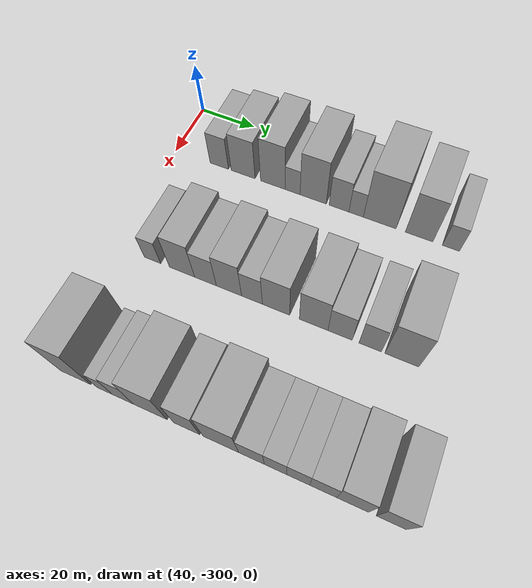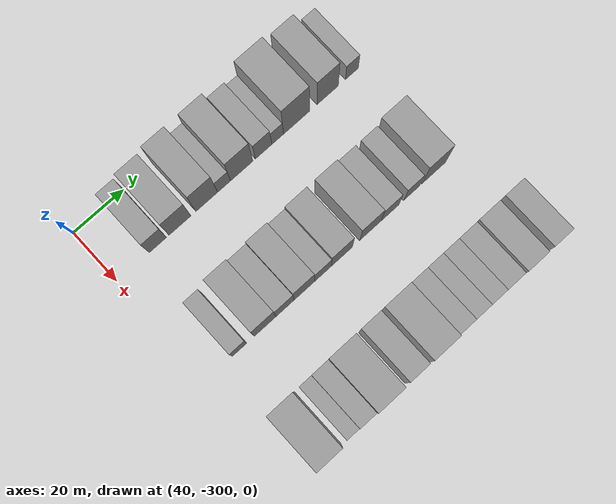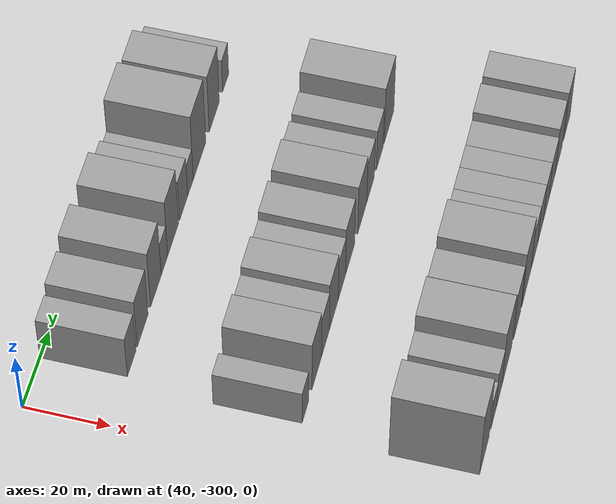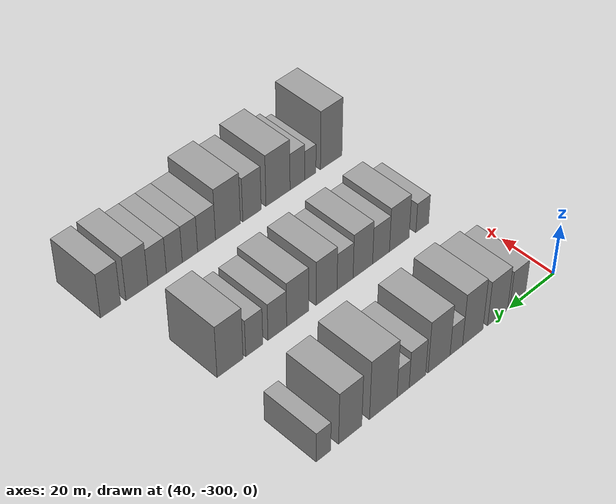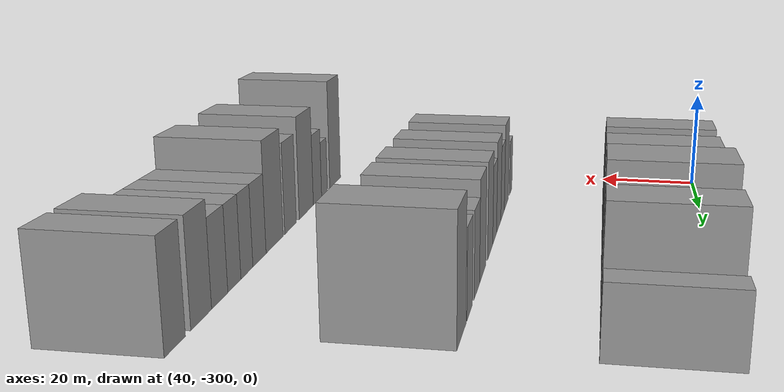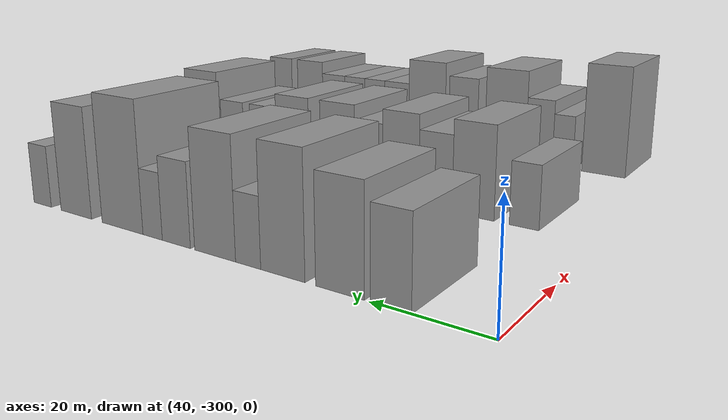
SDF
<sdf version="1.6">
 <world name="default">
  <model name="building_12">
   <static>1</static>
   <pose>50.0000 -283.6015 0 0.000000 0.000000 0.000000</pose>
   <link name="link">
    <pose>0 0 7.50 0 0 0</pose>
    <collision name="collision"><geometry><box><size>20.0000 6.8444 15.0000</size></box></geometry></collision>
    <visual name="visual">
     <cast_shadows>0</cast_shadows>
     <geometry><box><size>20.0000 6.8444 15.0000</size></box></geometry>
     <material>
      <script>
       <uri>model://grey_wall/materials/scripts</uri>
       <uri>model://grey_wall/materials/textures</uri>
       <name>vrc/grey_wall</name>
      </script>
     </material>
    </visual>
   </link>
  </model>
  <model name="building_13">
   <static>1</static>
   <pose>50.0000 -274.7930 0 0.000000 0.000000 0.000000</pose>
   <link name="link">
    <pose>0 0 9.00 0 0 0</pose>
    <collision name="collision"><geometry><box><size>20.0000 8.7725 18.0000</size></box></geometry></collision>
    <visual name="visual">
     <cast_shadows>0</cast_shadows>
     <geometry><box><size>20.0000 8.7725 18.0000</size></box></geometry>
     <material>
      <script>
       <uri>model://grey_wall/materials/scripts</uri>
       <uri>model://grey_wall/materials/textures</uri>
       <name>vrc/grey_wall</name>
      </script>
     </material>
    </visual>
   </link>
  </model>
  <model name="building_14">
   <static>1</static>
   <pose>50.0000 -264.0274 0 0.000000 0.000000 0.000000</pose>
   <link name="link">
    <pose>0 0 10.50 0 0 0</pose>
    <collision name="collision"><geometry><box><size>20.0000 8.7588 21.0000</size></box></geometry></collision>
    <visual name="visual">
     <cast_shadows>0</cast_shadows>
     <geometry><box><size>20.0000 8.7588 21.0000</size></box></geometry>
     <material>
      <script>
       <uri>model://grey_wall/materials/scripts</uri>
       <uri>model://grey_wall/materials/textures</uri>
       <name>vrc/grey_wall</name>
      </script>
     </material>
    </visual>
   </link>
  </model>
  <model name="building_15">
   <static>1</static>
   <pose>50.0000 -257.0057 0 0.000000 0.000000 0.000000</pose>
   <link name="link">
    <pose>0 0 6.00 0 0 0</pose>
    <collision name="collision"><geometry><box><size>20.0000 5.2845 12.0000</size></box></geometry></collision>
    <visual name="visual">
     <cast_shadows>0</cast_shadows>
     <geometry><box><size>20.0000 5.2845 12.0000</size></box></geometry>
     <material>
      <script>
       <uri>model://grey_wall/materials/scripts</uri>
       <uri>model://grey_wall/materials/textures</uri>
       <name>vrc/grey_wall</name>
      </script>
     </material>
    </visual>
   </link>
  </model>
  <model name="building_16">
   <static>1</static>
   <pose>50.0000 -249.7945 0 0.000000 0.000000 0.000000</pose>
   <link name="link">
    <pose>0 0 10.50 0 0 0</pose>
    <collision name="collision"><geometry><box><size>20.0000 9.1378 21.0000</size></box></geometry></collision>
    <visual name="visual">
     <cast_shadows>0</cast_shadows>
     <geometry><box><size>20.0000 9.1378 21.0000</size></box></geometry>
     <material>
      <script>
       <uri>model://grey_wall/materials/scripts</uri>
       <uri>model://grey_wall/materials/textures</uri>
       <name>vrc/grey_wall</name>
      </script>
     </material>
    </visual>
   </link>
  </model>
  <model name="building_17">
   <static>1</static>
   <pose>50.0000 -240.8552 0 0.000000 0.000000 0.000000</pose>
   <link name="link">
    <pose>0 0 7.50 0 0 0</pose>
    <collision name="collision"><geometry><box><size>20.0000 6.7409 15.0000</size></box></geometry></collision>
    <visual name="visual">
     <cast_shadows>0</cast_shadows>
     <geometry><box><size>20.0000 6.7409 15.0000</size></box></geometry>
     <material>
      <script>
       <uri>model://grey_wall/materials/scripts</uri>
       <uri>model://grey_wall/materials/textures</uri>
       <name>vrc/grey_wall</name>
      </script>
     </material>
    </visual>
   </link>
  </model>
  <model name="building_18">
   <static>1</static>
   <pose>50.0000 -235.0517 0 0.000000 0.000000 0.000000</pose>
   <link name="link">
    <pose>0 0 6.00 0 0 0</pose>
    <collision name="collision"><geometry><box><size>20.0000 4.8660 12.0000</size></box></geometry></collision>
    <visual name="visual">
     <cast_shadows>0</cast_shadows>
     <geometry><box><size>20.0000 4.8660 12.0000</size></box></geometry>
     <material>
      <script>
       <uri>model://grey_wall/materials/scripts</uri>
       <uri>model://grey_wall/materials/textures</uri>
       <name>vrc/grey_wall</name>
      </script>
     </material>
    </visual>
   </link>
  </model>
  <model name="building_19">
   <static>1</static>
   <pose>50.0000 -227.1657 0 0.000000 0.000000 0.000000</pose>
   <link name="link">
    <pose>0 0 12.00 0 0 0</pose>
    <collision name="collision"><geometry><box><size>20.0000 10.9060 24.0000</size></box></geometry></collision>
    <visual name="visual">
     <cast_shadows>0</cast_shadows>
     <geometry><box><size>20.0000 10.9060 24.0000</size></box></geometry>
     <material>
      <script>
       <uri>model://grey_wall/materials/scripts</uri>
       <uri>model://grey_wall/materials/textures</uri>
       <name>vrc/grey_wall</name>
      </script>
     </material>
    </visual>
   </link>
  </model>
  <model name="building_20">
   <static>1</static>
   <pose>50.0000 -214.2482 0 0.000000 0.000000 0.000000</pose>
   <link name="link">
    <pose>0 0 10.50 0 0 0</pose>
    <collision name="collision"><geometry><box><size>20.0000 8.9290 21.0000</size></box></geometry></collision>
    <visual name="visual">
     <cast_shadows>0</cast_shadows>
     <geometry><box><size>20.0000 8.9290 21.0000</size></box></geometry>
     <material>
      <script>
       <uri>model://grey_wall/materials/scripts</uri>
       <uri>model://grey_wall/materials/textures</uri>
       <name>vrc/grey_wall</name>
      </script>
     </material>
    </visual>
   </link>
  </model>
  <model name="building_21">
   <static>1</static>
   <pose>50.0000 -204.0653 0 0.000000 0.000000 0.000000</pose>
   <link name="link">
    <pose>0 0 6.00 0 0 0</pose>
    <collision name="collision"><geometry><box><size>20.0000 5.4369 12.0000</size></box></geometry></collision>
    <visual name="visual">
     <cast_shadows>0</cast_shadows>
     <geometry><box><size>20.0000 5.4369 12.0000</size></box></geometry>
     <material>
      <script>
       <uri>model://grey_wall/materials/scripts</uri>
       <uri>model://grey_wall/materials/textures</uri>
       <name>vrc/grey_wall</name>
      </script>
     </material>
    </visual>
   </link>
  </model>
  <model name="building_102">
   <static>1</static>
   <pose>90.0000 -286.2697 0 0.000000 0.000000 0.000000</pose>
   <link name="link">
    <pose>0 0 6.00 0 0 0</pose>
    <collision name="collision"><geometry><box><size>20.0000 5.6726 12.0000</size></box></geometry></collision>
    <visual name="visual">
     <cast_shadows>0</cast_shadows>
     <geometry><box><size>20.0000 5.6726 12.0000</size></box></geometry>
     <material>
      <script>
       <uri>model://grey_wall/materials/scripts</uri>
       <uri>model://grey_wall/materials/textures</uri>
       <name>vrc/grey_wall</name>
      </script>
     </material>
    </visual>
   </link>
  </model>
  <model name="building_103">
   <static>1</static>
   <pose>90.0000 -276.1314 0 0.000000 0.000000 0.000000</pose>
   <link name="link">
    <pose>0 0 9.00 0 0 0</pose>
    <collision name="collision"><geometry><box><size>20.0000 8.6039 18.0000</size></box></geometry></collision>
    <visual name="visual">
     <cast_shadows>0</cast_shadows>
     <geometry><box><size>20.0000 8.6039 18.0000</size></box></geometry>
     <material>
      <script>
       <uri>model://grey_wall/materials/scripts</uri>
       <uri>model://grey_wall/materials/textures</uri>
       <name>vrc/grey_wall</name>
      </script>
     </material>
    </visual>
   </link>
  </model>
  <model name="building_104">
   <static>1</static>
   <pose>90.0000 -268.1952 0 0.000000 0.000000 0.000000</pose>
   <link name="link">
    <pose>0 0 7.50 0 0 0</pose>
    <collision name="collision"><geometry><box><size>20.0000 7.2685 15.0000</size></box></geometry></collision>
    <visual name="visual">
     <cast_shadows>0</cast_shadows>
     <geometry><box><size>20.0000 7.2685 15.0000</size></box></geometry>
     <material>
      <script>
       <uri>model://grey_wall/materials/scripts</uri>
       <uri>model://grey_wall/materials/textures</uri>
       <name>vrc/grey_wall</name>
      </script>
     </material>
    </visual>
   </link>
  </model>
  <model name="building_105">
   <static>1</static>
   <pose>90.0000 -260.4271 0 0.000000 0.000000 0.000000</pose>
   <link name="link">
    <pose>0 0 9.00 0 0 0</pose>
    <collision name="collision"><geometry><box><size>20.0000 8.2677 18.0000</size></box></geometry></collision>
    <visual name="visual">
     <cast_shadows>0</cast_shadows>
     <geometry><box><size>20.0000 8.2677 18.0000</size></box></geometry>
     <material>
      <script>
       <uri>model://grey_wall/materials/scripts</uri>
       <uri>model://grey_wall/materials/textures</uri>
       <name>vrc/grey_wall</name>
      </script>
     </material>
    </visual>
   </link>
  </model>
  <model name="building_106">
   <static>1</static>
   <pose>90.0000 -252.9322 0 0.000000 0.000000 0.000000</pose>
   <link name="link">
    <pose>0 0 7.50 0 0 0</pose>
    <collision name="collision"><geometry><box><size>20.0000 6.7220 15.0000</size></box></geometry></collision>
    <visual name="visual">
     <cast_shadows>0</cast_shadows>
     <geometry><box><size>20.0000 6.7220 15.0000</size></box></geometry>
     <material>
      <script>
       <uri>model://grey_wall/materials/scripts</uri>
       <uri>model://grey_wall/materials/textures</uri>
       <name>vrc/grey_wall</name>
      </script>
     </material>
    </visual>
   </link>
  </model>
  <model name="building_107">
   <static>1</static>
   <pose>90.0000 -245.2577 0 0.000000 0.000000 0.000000</pose>
   <link name="link">
    <pose>0 0 9.00 0 0 0</pose>
    <collision name="collision"><geometry><box><size>20.0000 8.6270 18.0000</size></box></geometry></collision>
    <visual name="visual">
     <cast_shadows>0</cast_shadows>
     <geometry><box><size>20.0000 8.6270 18.0000</size></box></geometry>
     <material>
      <script>
       <uri>model://grey_wall/materials/scripts</uri>
       <uri>model://grey_wall/materials/textures</uri>
       <name>vrc/grey_wall</name>
      </script>
     </material>
    </visual>
   </link>
  </model>
  <model name="building_108">
   <static>1</static>
   <pose>90.0000 -233.5335 0 0.000000 0.000000 0.000000</pose>
   <link name="link">
    <pose>0 0 9.00 0 0 0</pose>
    <collision name="collision"><geometry><box><size>20.0000 8.8213 18.0000</size></box></geometry></collision>
    <visual name="visual">
     <cast_shadows>0</cast_shadows>
     <geometry><box><size>20.0000 8.8213 18.0000</size></box></geometry>
     <material>
      <script>
       <uri>model://grey_wall/materials/scripts</uri>
       <uri>model://grey_wall/materials/textures</uri>
       <name>vrc/grey_wall</name>
      </script>
     </material>
    </visual>
   </link>
  </model>
  <model name="building_109">
   <static>1</static>
   <pose>90.0000 -225.4375 0 0.000000 0.000000 0.000000</pose>
   <link name="link">
    <pose>0 0 7.50 0 0 0</pose>
    <collision name="collision"><geometry><box><size>20.0000 7.3708 15.0000</size></box></geometry></collision>
    <visual name="visual">
     <cast_shadows>0</cast_shadows>
     <geometry><box><size>20.0000 7.3708 15.0000</size></box></geometry>
     <material>
      <script>
       <uri>model://grey_wall/materials/scripts</uri>
       <uri>model://grey_wall/materials/textures</uri>
       <name>vrc/grey_wall</name>
      </script>
     </material>
    </visual>
   </link>
  </model>
  <model name="building_110">
   <static>1</static>
   <pose>90.0000 -216.4301 0 0.000000 0.000000 0.000000</pose>
   <link name="link">
    <pose>0 0 7.50 0 0 0</pose>
    <collision name="collision"><geometry><box><size>20.0000 6.6440 15.0000</size></box></geometry></collision>
    <visual name="visual">
     <cast_shadows>0</cast_shadows>
     <geometry><box><size>20.0000 6.6440 15.0000</size></box></geometry>
     <material>
      <script>
       <uri>model://grey_wall/materials/scripts</uri>
       <uri>model://grey_wall/materials/textures</uri>
       <name>vrc/grey_wall</name>
      </script>
     </material>
    </visual>
   </link>
  </model>
  <model name="building_111">
   <static>1</static>
   <pose>90.0000 -207.1613 0 0.000000 0.000000 0.000000</pose>
   <link name="link">
    <pose>0 0 10.50 0 0 0</pose>
    <collision name="collision"><geometry><box><size>20.0000 9.8936 21.0000</size></box></geometry></collision>
    <visual name="visual">
     <cast_shadows>0</cast_shadows>
     <geometry><box><size>20.0000 9.8936 21.0000</size></box></geometry>
     <material>
      <script>
       <uri>model://grey_wall/materials/scripts</uri>
       <uri>model://grey_wall/materials/textures</uri>
       <name>vrc/grey_wall</name>
      </script>
     </material>
    </visual>
   </link>
  </model>
  <model name="building_184">
   <static>1</static>
   <pose>130.0000 -287.3935 0 0.000000 0.000000 0.000000</pose>
   <link name="link">
    <pose>0 0 12.00 0 0 0</pose>
    <collision name="collision"><geometry><box><size>20.0000 9.6021 24.0000</size></box></geometry></collision>
    <visual name="visual">
     <cast_shadows>0</cast_shadows>
     <geometry><box><size>20.0000 9.6021 24.0000</size></box></geometry>
     <material>
      <script>
       <uri>model://grey_wall/materials/scripts</uri>
       <uri>model://grey_wall/materials/textures</uri>
       <name>vrc/grey_wall</name>
      </script>
     </material>
    </visual>
   </link>
  </model>
  <model name="building_185">
   <static>1</static>
   <pose>130.0000 -278.1843 0 0.000000 0.000000 0.000000</pose>
   <link name="link">
    <pose>0 0 6.00 0 0 0</pose>
    <collision name="collision"><geometry><box><size>20.0000 4.8162 12.0000</size></box></geometry></collision>
    <visual name="visual">
     <cast_shadows>0</cast_shadows>
     <geometry><box><size>20.0000 4.8162 12.0000</size></box></geometry>
     <material>
      <script>
       <uri>model://grey_wall/materials/scripts</uri>
       <uri>model://grey_wall/materials/textures</uri>
       <name>vrc/grey_wall</name>
      </script>
     </material>
    </visual>
   </link>
  </model>
  <model name="building_186">
   <static>1</static>
   <pose>130.0000 -272.5391 0 0.000000 0.000000 0.000000</pose>
   <link name="link">
    <pose>0 0 7.50 0 0 0</pose>
    <collision name="collision"><geometry><box><size>20.0000 6.4742 15.0000</size></box></geometry></collision>
    <visual name="visual">
     <cast_shadows>0</cast_shadows>
     <geometry><box><size>20.0000 6.4742 15.0000</size></box></geometry>
     <material>
      <script>
       <uri>model://grey_wall/materials/scripts</uri>
       <uri>model://grey_wall/materials/textures</uri>
       <name>vrc/grey_wall</name>
      </script>
     </material>
    </visual>
   </link>
  </model>
  <model name="building_187">
   <static>1</static>
   <pose>130.0000 -264.1479 0 0.000000 0.000000 0.000000</pose>
   <link name="link">
    <pose>0 0 10.50 0 0 0</pose>
    <collision name="collision"><geometry><box><size>20.0000 10.3081 21.0000</size></box></geometry></collision>
    <visual name="visual">
     <cast_shadows>0</cast_shadows>
     <geometry><box><size>20.0000 10.3081 21.0000</size></box></geometry>
     <material>
      <script>
       <uri>model://grey_wall/materials/scripts</uri>
       <uri>model://grey_wall/materials/textures</uri>
       <name>vrc/grey_wall</name>
      </script>
     </material>
    </visual>
   </link>
  </model>
  <model name="building_188">
   <static>1</static>
   <pose>130.0000 -253.1530 0 0.000000 0.000000 0.000000</pose>
   <link name="link">
    <pose>0 0 9.00 0 0 0</pose>
    <collision name="collision"><geometry><box><size>20.0000 7.6817 18.0000</size></box></geometry></collision>
    <visual name="visual">
     <cast_shadows>0</cast_shadows>
     <geometry><box><size>20.0000 7.6817 18.0000</size></box></geometry>
     <material>
      <script>
       <uri>model://grey_wall/materials/scripts</uri>
       <uri>model://grey_wall/materials/textures</uri>
       <name>vrc/grey_wall</name>
      </script>
     </material>
    </visual>
   </link>
  </model>
  <model name="building_189">
   <static>1</static>
   <pose>130.0000 -243.2009 0 0.000000 0.000000 0.000000</pose>
   <link name="link">
    <pose>0 0 10.50 0 0 0</pose>
    <collision name="collision"><geometry><box><size>20.0000 10.2226 21.0000</size></box></geometry></collision>
    <visual name="visual">
     <cast_shadows>0</cast_shadows>
     <geometry><box><size>20.0000 10.2226 21.0000</size></box></geometry>
     <material>
      <script>
       <uri>model://grey_wall/materials/scripts</uri>
       <uri>model://grey_wall/materials/textures</uri>
       <name>vrc/grey_wall</name>
      </script>
     </material>
    </visual>
   </link>
  </model>
  <model name="building_190">
   <static>1</static>
   <pose>130.0000 -234.4790 0 0.000000 0.000000 0.000000</pose>
   <link name="link">
    <pose>0 0 7.50 0 0 0</pose>
    <collision name="collision"><geometry><box><size>20.0000 7.2211 15.0000</size></box></geometry></collision>
    <visual name="visual">
     <cast_shadows>0</cast_shadows>
     <geometry><box><size>20.0000 7.2211 15.0000</size></box></geometry>
     <material>
      <script>
       <uri>model://grey_wall/materials/scripts</uri>
       <uri>model://grey_wall/materials/textures</uri>
       <name>vrc/grey_wall</name>
      </script>
     </material>
    </visual>
   </link>
  </model>
  <model name="building_191">
   <static>1</static>
   <pose>130.0000 -227.8186 0 0.000000 0.000000 0.000000</pose>
   <link name="link">
    <pose>0 0 7.50 0 0 0</pose>
    <collision name="collision"><geometry><box><size>20.0000 6.0998 15.0000</size></box></geometry></collision>
    <visual name="visual">
     <cast_shadows>0</cast_shadows>
     <geometry><box><size>20.0000 6.0998 15.0000</size></box></geometry>
     <material>
      <script>
       <uri>model://grey_wall/materials/scripts</uri>
       <uri>model://grey_wall/materials/textures</uri>
       <name>vrc/grey_wall</name>
      </script>
     </material>
    </visual>
   </link>
  </model>
  <model name="building_192">
   <static>1</static>
   <pose>130.0000 -221.6328 0 0.000000 0.000000 0.000000</pose>
   <link name="link">
    <pose>0 0 7.50 0 0 0</pose>
    <collision name="collision"><geometry><box><size>20.0000 6.2718 15.0000</size></box></geometry></collision>
    <visual name="visual">
     <cast_shadows>0</cast_shadows>
     <geometry><box><size>20.0000 6.2718 15.0000</size></box></geometry>
     <material>
      <script>
       <uri>model://grey_wall/materials/scripts</uri>
       <uri>model://grey_wall/materials/textures</uri>
       <name>vrc/grey_wall</name>
      </script>
     </material>
    </visual>
   </link>
  </model>
  <model name="building_193">
   <static>1</static>
   <pose>130.0000 -214.9207 0 0.000000 0.000000 0.000000</pose>
   <link name="link">
    <pose>0 0 7.50 0 0 0</pose>
    <collision name="collision"><geometry><box><size>20.0000 7.1523 15.0000</size></box></geometry></collision>
    <visual name="visual">
     <cast_shadows>0</cast_shadows>
     <geometry><box><size>20.0000 7.1523 15.0000</size></box></geometry>
     <material>
      <script>
       <uri>model://grey_wall/materials/scripts</uri>
       <uri>model://grey_wall/materials/textures</uri>
       <name>vrc/grey_wall</name>
      </script>
     </material>
    </visual>
   </link>
  </model>
  <model name="building_194">
   <static>1</static>
   <pose>130.0000 -207.1420 0 0.000000 0.000000 0.000000</pose>
   <link name="link">
    <pose>0 0 9.00 0 0 0</pose>
    <collision name="collision"><geometry><box><size>20.0000 8.4051 18.0000</size></box></geometry></collision>
    <visual name="visual">
     <cast_shadows>0</cast_shadows>
     <geometry><box><size>20.0000 8.4051 18.0000</size></box></geometry>
     <material>
      <script>
       <uri>model://grey_wall/materials/scripts</uri>
       <uri>model://grey_wall/materials/textures</uri>
       <name>vrc/grey_wall</name>
      </script>
     </material>
    </visual>
   </link>
  </model>
  <model name="building_195">
   <static>1</static>
   <pose>130.0000 -197.1475 0 0.000000 0.000000 0.000000</pose>
   <link name="link">
    <pose>0 0 9.00 0 0 0</pose>
    <collision name="collision"><geometry><box><size>20.0000 7.5839 18.0000</size></box></geometry></collision>
    <visual name="visual">
     <cast_shadows>0</cast_shadows>
     <geometry><box><size>20.0000 7.5839 18.0000</size></box></geometry>
     <material>
      <script>
       <uri>model://grey_wall/materials/scripts</uri>
       <uri>model://grey_wall/materials/textures</uri>
       <name>vrc/grey_wall</name>
      </script>
     </material>
    </visual>
   </link>
  </model>
 </world>
</sdf>
